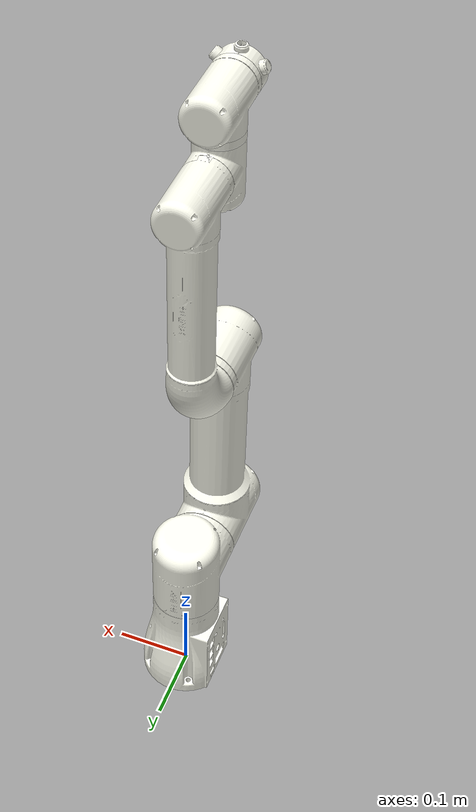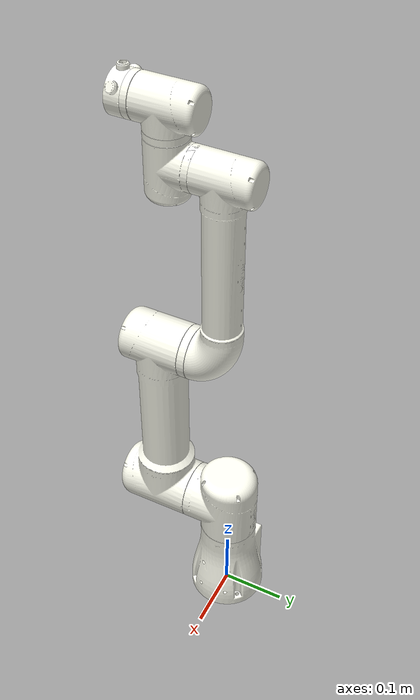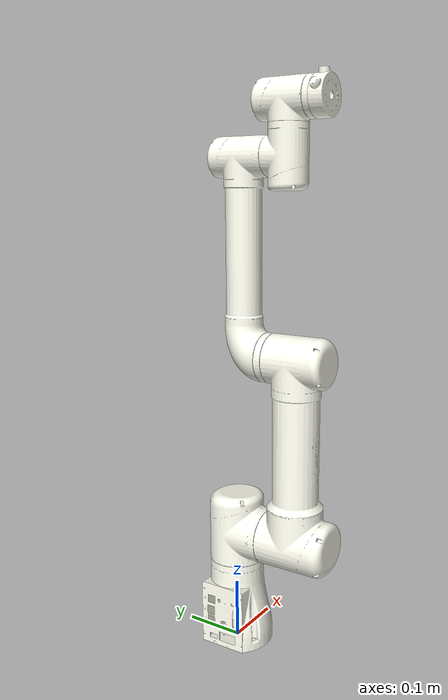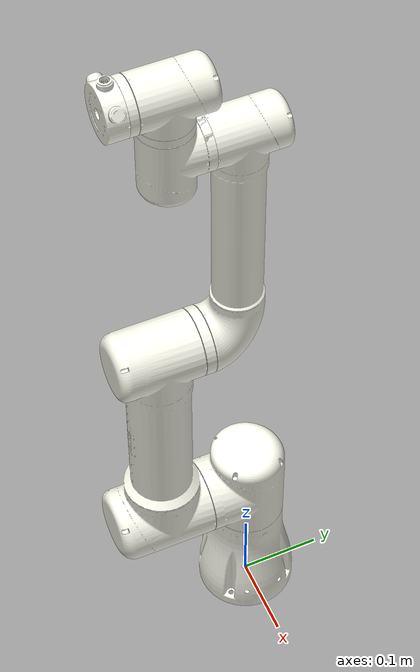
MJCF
<mujoco model="collrobstd2">
  <compiler angle="radian"/>

  <asset>
    <mesh name="Link0" content_type="model/stl" file="meshes/Link0.STL"/>
    <mesh name="Link1" content_type="model/stl" file="meshes/Link1.STL"/>
    <mesh name="Link2" content_type="model/stl" file="meshes/Link2.STL"/>
    <mesh name="Link3" content_type="model/stl" file="meshes/Link3.STL"/>
    <mesh name="Link4" content_type="model/stl" file="meshes/Link4.STL"/>
    <mesh name="Link5" content_type="model/stl" file="meshes/Link5.STL"/>
    <mesh name="Link6" content_type="model/stl" file="meshes/Link6.STL"/>
  </asset>

  <worldbody>
    <geom type="mesh" rgba="1 1 0.945 1" mesh="Link0"/>
    <body name="Link1" pos="0 0 0.2" quat="0.499998 0.5 0.5 -0.500002">
      <inertial pos="-0.00608 0 0.00419" quat="0.950525 0 -0.310647 0" mass="0.8038" diaginertia="0.000943567 0.0008464 0.000762733"/>
      <joint name="joint1" pos="0 0 0" axis="1 0 0" range="-3.054 3.054" actuatorfrcrange="-50 50"/>
      <geom type="mesh" rgba="1 1 0.945 1" mesh="Link1"/>
      <body name="Link2" pos="-0.2995 0 0.01625" quat="0.707105 0 0 -0.707108">
        <inertial pos="0 0.16861 0.09883" quat="0.505317 0.494626 -0.494626 0.505317" mass="2.1259" diaginertia="0.00398141 0.0039186 0.00178249"/>
        <joint name="joint2" pos="0 0 0" axis="0 0 -1" range="-2.094 2.094" actuatorfrcrange="-50 50"/>
        <geom type="mesh" rgba="1 1 0.945 1" mesh="Link2"/>
        <body name="Link3" pos="0 -0.301 0">
          <inertial pos="0 0.14455 0.00184" quat="0.700651 0.713504 0 0" mass="1.0226" diaginertia="0.0020493 0.00204842 0.000485584"/>
          <joint name="joint3" pos="0 0 0" axis="0 0 -1" range="-2.618 2.618" actuatorfrcrange="-40 40"/>
          <geom type="mesh" rgba="1 1 0.945 1" mesh="Link3"/>
          <body name="Link4" pos="0 0 0.07775" quat="0.499998 0.5 0.5 -0.500002">
            <inertial pos="0.00269 0 -0.00483" quat="0.930734 0 -0.365697 0" mass="0.2628" diaginertia="0.000141361 0.0001326 0.000118139"/>
            <joint name="joint4" pos="0 0 0" axis="1 0 0" range="-3.054 3.054" actuatorfrcrange="-20 20"/>
            <geom type="mesh" rgba="1 1 0.945 1" mesh="Link4"/>
            <body name="Link5" pos="0 0 0.0785" quat="0.707105 -0.707108 0 0">
              <inertial pos="0.0049 0.00216 0" quat="0.271303 0.271303 0.652989 0.652989" mass="0.2589" diaginertia="0.00013883 0.0001309 0.00011567"/>
              <joint name="joint5" pos="0 0 0" axis="0 1 0" range="-3.054 3.054" actuatorfrcrange="-20 20"/>
              <geom type="mesh" rgba="1 1 0.945 1" mesh="Link5"/>
              <body name="Link6" pos="-0.07825 0 0">
                <inertial pos="0.02174 -0.00213 0.00014" quat="0.707107 0.707107 0 0" mass="0.0352" diaginertia="2.088e-05 1.28e-05 1.276e-05"/>
                <joint name="joint6" pos="0 0 0" axis="1 0 0" range="-3.054 3.054" actuatorfrcrange="-15 15"/>
                <geom type="mesh" rgba="1 1 0.945 1" mesh="Link6"/>
              </body>
            </body>
          </body>
        </body>
      </body>
    </body>
  </worldbody>
</mujoco>
